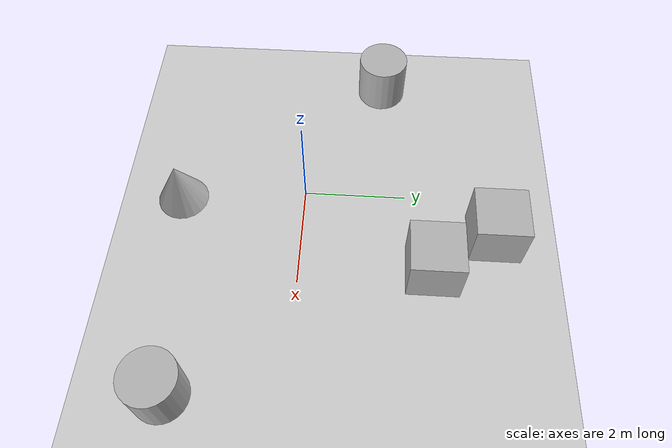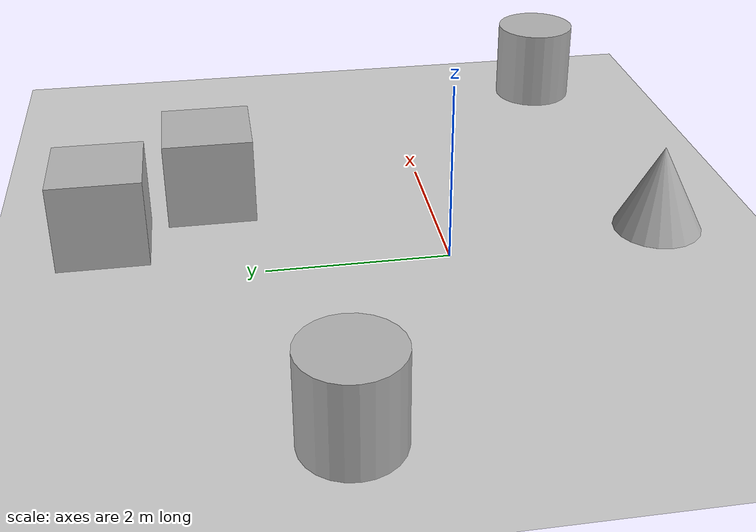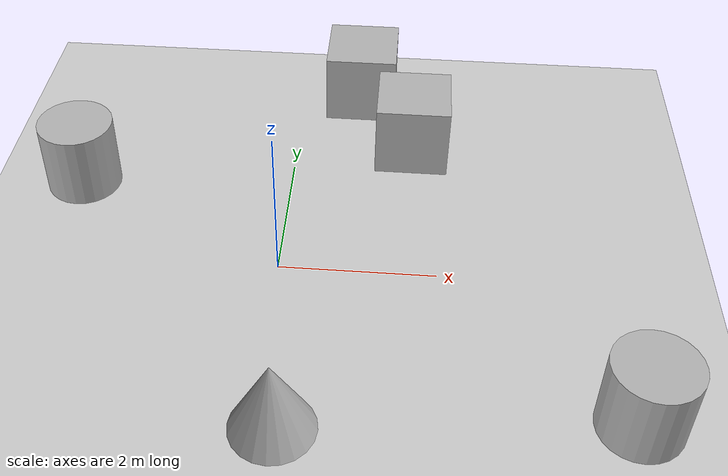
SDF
<sdf version='1.10'>
  <world name='empty'>
    <physics name='1ms' type='ignored'>
      <max_step_size>0.001</max_step_size>
      <real_time_factor>1</real_time_factor>
      <real_time_update_rate>1000</real_time_update_rate>
    </physics>
    <plugin name='gz::sim::systems::Physics' filename='gz-sim-physics-system'/>
    <plugin name='gz::sim::systems::UserCommands' filename='gz-sim-user-commands-system'/>
    <plugin name='gz::sim::systems::SceneBroadcaster' filename='gz-sim-scene-broadcaster-system'/>
    <plugin name='gz::sim::systems::Sensors' filename='gz-sim-sensors-system'>
      <render_engine>ogre2</render_engine>
    </plugin>
    <plugin name='gz::sim::systems::Contact' filename='gz-sim-contact-system'/>
    <gravity>0 0 -9.8000000000000007</gravity>
    <magnetic_field>5.5644999999999998e-06 2.2875799999999999e-05 -4.2388400000000002e-05</magnetic_field>
    <atmosphere type='adiabatic'/>
    <scene>
      <ambient>0.400000006 0.400000006 0.400000006 1</ambient>
      <background>0.699999988 0.699999988 0.699999988 1</background>
      <shadows>true</shadows>
    </scene>
    <model name='ground_plane'>
      <static>true</static>
      <link name='link'>
        <collision name='collision'>
          <geometry>
            <plane>
              <normal>0 0 1</normal>
              <size>100 100</size>
            </plane>
          </geometry>
          <surface>
            <friction>
              <ode/>
            </friction>
            <bounce/>
            <contact/>
          </surface>
        </collision>
        <visual name='visual'>
          <geometry>
            <plane>
              <normal>0 0 1</normal>
              <size>100 100</size>
            </plane>
          </geometry>
          <material>
            <ambient>0.800000012 0.800000012 0.800000012 1</ambient>
            <diffuse>0.800000012 0.800000012 0.800000012 1</diffuse>
            <specular>0.800000012 0.800000012 0.800000012 1</specular>
          </material>
        </visual>
        <pose>0 0 0 0 0 0</pose>
        <inertial>
          <pose>0 0 0 0 0 0</pose>
          <mass>1</mass>
          <inertia>
            <ixx>1</ixx>
            <ixy>0</ixy>
            <ixz>0</ixz>
            <iyy>1</iyy>
            <iyz>0</iyz>
            <izz>1</izz>
          </inertia>
        </inertial>
        <enable_wind>false</enable_wind>
      </link>
      <pose>0 0 0 0 0 0</pose>
      <self_collide>false</self_collide>
    </model>
    <model name='box'>
      <pose>1.6182270004048602 2.518191095176971 0.49999999990199806 2.163106304372845e-21 -1.6560291693952328e-21 2.2452215946946745e-23</pose>
      <link name='box_link'>
        <inertial>
          <inertia>
            <ixx>0.16666</ixx>
            <ixy>0</ixy>
            <ixz>0</ixz>
            <iyy>0.16666</iyy>
            <iyz>0</iyz>
            <izz>0.16666</izz>
          </inertia>
          <mass>1</mass>
          <pose>0 0 0 0 0 0</pose>
        </inertial>
        <collision name='box_collision'>
          <geometry>
            <box>
              <size>1 1 1</size>
            </box>
          </geometry>
          <surface>
            <friction>
              <ode/>
            </friction>
            <bounce/>
            <contact/>
          </surface>
        </collision>
        <visual name='box_visual'>
          <geometry>
            <box>
              <size>1 1 1</size>
            </box>
          </geometry>
          <material>
            <ambient>0.300000012 0.300000012 0.300000012 1</ambient>
            <diffuse>0.699999988 0.699999988 0.699999988 1</diffuse>
            <specular>1 1 1 1</specular>
          </material>
        </visual>
        <pose>0 0 0 0 0 0</pose>
        <enable_wind>false</enable_wind>
      </link>
      <static>false</static>
      <self_collide>false</self_collide>
    </model>
    <model name='cylinder'>
      <pose>4.2173936050943048 -2.0997410378037888 0.49999942638036005 1.6994375092364656e-19 5.8359193658851447e-19 -1.7793964403189687e-20</pose>
      <link name='cylinder_link'>
        <inertial>
          <inertia>
            <ixx>0.14580000000000001</ixx>
            <ixy>0</ixy>
            <ixz>0</ixz>
            <iyy>0.14580000000000001</iyy>
            <iyz>0</iyz>
            <izz>0.125</izz>
          </inertia>
          <mass>1</mass>
          <pose>0 0 0 0 0 0</pose>
        </inertial>
        <collision name='cylinder_collision'>
          <geometry>
            <cylinder>
              <radius>0.5</radius>
              <length>1</length>
            </cylinder>
          </geometry>
          <surface>
            <friction>
              <ode/>
            </friction>
            <bounce/>
            <contact/>
          </surface>
        </collision>
        <visual name='cylinder_visual'>
          <geometry>
            <cylinder>
              <radius>0.5</radius>
              <length>1</length>
            </cylinder>
          </geometry>
          <material>
            <ambient>0.300000012 0.300000012 0.300000012 1</ambient>
            <diffuse>0.699999988 0.699999988 0.699999988 1</diffuse>
            <specular>1 1 1 1</specular>
          </material>
        </visual>
        <pose>0 0 0 0 0 0</pose>
        <enable_wind>false</enable_wind>
      </link>
      <static>false</static>
      <self_collide>false</self_collide>
    </model>
    <model name='cone'>
      <pose>0.24362257098040935 -2.4594445953744257 0.49999999993296756 5.2542448694169758e-17 -7.7132841036291103e-10 -1.2097262827116141e-22</pose>
      <link name='cone_link'>
        <inertial>
          <inertia>
            <ixx>0.074999999999999997</ixx>
            <ixy>0</ixy>
            <ixz>0</ixz>
            <iyy>0.074999999999999997</iyy>
            <iyz>0</iyz>
            <izz>0.074999999999999997</izz>
          </inertia>
          <mass>1</mass>
          <pose>0 0 0 0 0 0</pose>
        </inertial>
        <collision name='cone_collision'>
          <geometry>
            <cone>
              <radius>0.5</radius>
              <length>1</length>
            </cone>
          </geometry>
          <surface>
            <friction>
              <ode/>
            </friction>
            <bounce/>
            <contact/>
          </surface>
        </collision>
        <visual name='cone_visual'>
          <geometry>
            <cone>
              <radius>0.5</radius>
              <length>1</length>
            </cone>
          </geometry>
          <material>
            <ambient>0.300000012 0.300000012 0.300000012 1</ambient>
            <diffuse>0.699999988 0.699999988 0.699999988 1</diffuse>
            <specular>1 1 1 1</specular>
          </material>
        </visual>
        <pose>0 0 0 0 0 0</pose>
        <enable_wind>false</enable_wind>
      </link>
      <static>false</static>
      <self_collide>false</self_collide>
    </model>
    <model name='box_0'>
      <pose>0.83890403876954878 3.7135262983482522 0.49999999990199806 -2.052788585189231e-21 7.9840368278892396e-22 1.4978535966898781e-22</pose>
      <link name='box_link'>
        <inertial>
          <inertia>
            <ixx>0.16666</ixx>
            <ixy>0</ixy>
            <ixz>0</ixz>
            <iyy>0.16666</iyy>
            <iyz>0</iyz>
            <izz>0.16666</izz>
          </inertia>
          <mass>1</mass>
          <pose>0 0 0 0 0 0</pose>
        </inertial>
        <collision name='box_collision'>
          <geometry>
            <box>
              <size>1 1 1</size>
            </box>
          </geometry>
          <surface>
            <friction>
              <ode/>
            </friction>
            <bounce/>
            <contact/>
          </surface>
        </collision>
        <visual name='box_visual'>
          <geometry>
            <box>
              <size>1 1 1</size>
            </box>
          </geometry>
          <material>
            <ambient>0.300000012 0.300000012 0.300000012 1</ambient>
            <diffuse>0.699999988 0.699999988 0.699999988 1</diffuse>
            <specular>1 1 1 1</specular>
          </material>
        </visual>
        <pose>0 0 0 0 0 0</pose>
        <enable_wind>false</enable_wind>
      </link>
      <static>false</static>
      <self_collide>false</self_collide>
    </model>
    <model name='cylinder_0'>
      <pose>-2.8650815444597537 1.4691563746392233 0.49999942638036005 -1.0506718808923666e-19 -3.5970646661386012e-19 -1.4103293725508802e-20</pose>
      <link name='cylinder_link'>
        <inertial>
          <inertia>
            <ixx>0.14580000000000001</ixx>
            <ixy>0</ixy>
            <ixz>0</ixz>
            <iyy>0.14580000000000001</iyy>
            <iyz>0</iyz>
            <izz>0.125</izz>
          </inertia>
          <mass>1</mass>
          <pose>0 0 0 0 0 0</pose>
        </inertial>
        <collision name='cylinder_collision'>
          <geometry>
            <cylinder>
              <radius>0.5</radius>
              <length>1</length>
            </cylinder>
          </geometry>
          <surface>
            <friction>
              <ode/>
            </friction>
            <bounce/>
            <contact/>
          </surface>
        </collision>
        <visual name='cylinder_visual'>
          <geometry>
            <cylinder>
              <radius>0.5</radius>
              <length>1</length>
            </cylinder>
          </geometry>
          <material>
            <ambient>0.300000012 0.300000012 0.300000012 1</ambient>
            <diffuse>0.699999988 0.699999988 0.699999988 1</diffuse>
            <specular>1 1 1 1</specular>
          </material>
        </visual>
        <pose>0 0 0 0 0 0</pose>
        <enable_wind>false</enable_wind>
      </link>
      <static>false</static>
      <self_collide>false</self_collide>
    </model>
    <light name='sun' type='directional'>
      <pose>0 0 10 0 0 0</pose>
      <cast_shadows>true</cast_shadows>
      <intensity>1</intensity>
      <direction>-0.5 0.10000000000000001 -0.90000000000000002</direction>
      <diffuse>0.800000012 0.800000012 0.800000012 1</diffuse>
      <specular>0.200000003 0.200000003 0.200000003 1</specular>
      <attenuation>
        <range>1000</range>
        <linear>0.01</linear>
        <constant>0.90000000000000002</constant>
        <quadratic>0.001</quadratic>
      </attenuation>
      <spot>
        <inner_angle>0</inner_angle>
        <outer_angle>0</outer_angle>
        <falloff>0</falloff>
      </spot>
    </light>
  </world>
</sdf>
